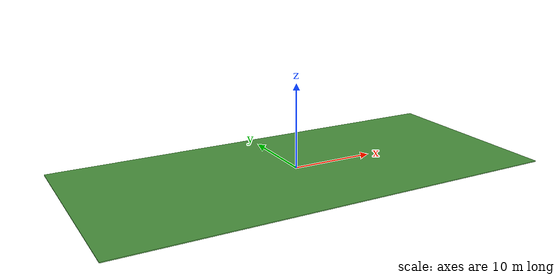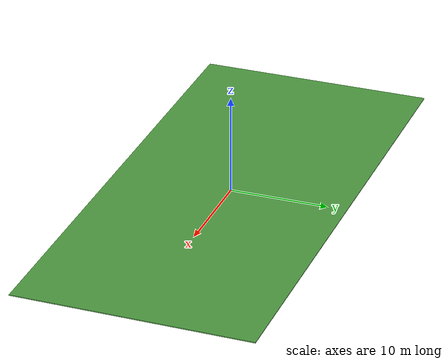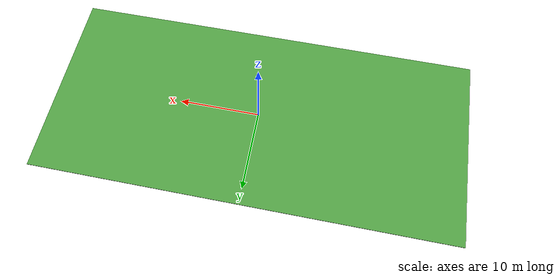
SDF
<?xml version="1.0" ?>
<sdf version="1.5">
  <model name="grass_plane_sc">
    <static>true</static>
    <link name="link">
      <collision name="collision">
        <geometry>
          <box>
            <size>52 24 .1</size>
          </box>
        </geometry>
      </collision>
      <visual name="visual">
        <cast_shadows>false</cast_shadows>
        <geometry>
          <box>
            <size>52 24 .1</size>
          </box>
        </geometry>
        <material>
          <script>
            <uri>model://grass_plane_sc/materials/scripts</uri>
            <uri>model://grass_plane_sc/materials/textures</uri>
            <name>grass</name>
          </script>
        </material>
      </visual>
    </link>
  </model>
</sdf>
